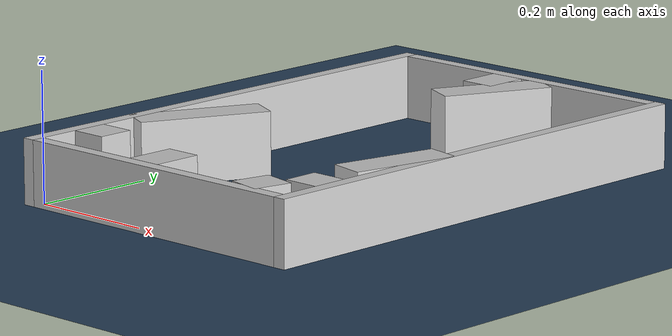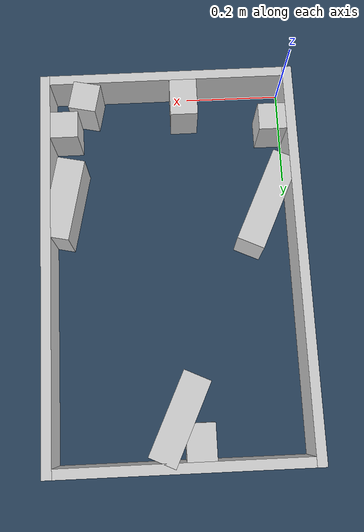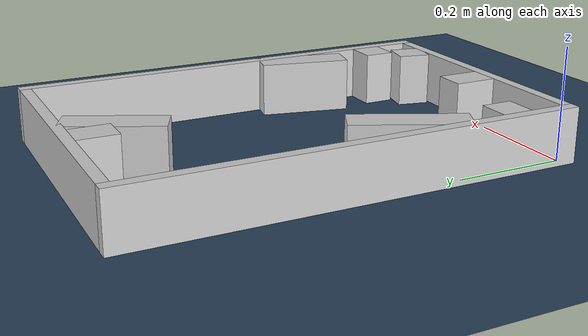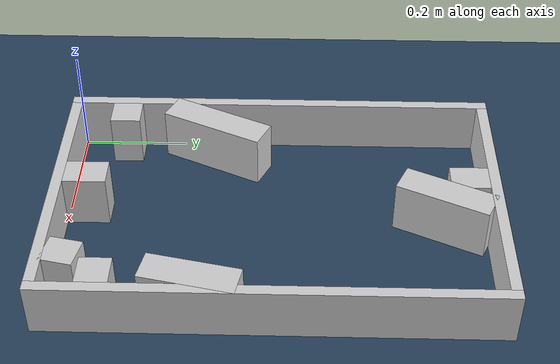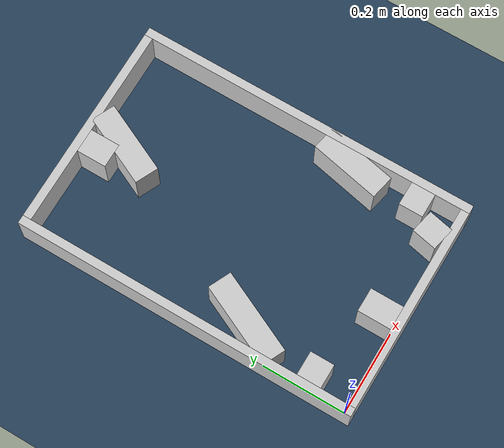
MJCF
<?xml version="1.0" ?>
<mujoco model="generated_real_template">
  <compiler angle="degree"/>
  <option timestep="0.002" integrator="implicitfast" iterations="100" cone="elliptic"/>
  <default>
    <geom density="1"/>
  </default>
  <asset>
    <texture builtin="gradient" height="3072" rgb1="0.3 0.5 0.7" rgb2="0 0 0" type="skybox" width="512"/>
    <texture builtin="checker" height="300" mark="edge" markrgb="0.8 0.8 0.8" name="groundplane" rgb1="0.2 0.3 0.4" rgb2="0.1 0.2 0.3" type="2d" width="300"/>
    <material name="groundplane" reflectance="0.2" texrepeat="5 5" texture="groundplane" texuniform="true"/>
  </asset>
  <worldbody>
    <light dir="0 0 -1" directional="true" pos="0 0 1.5"/>
    <geom name="floor" type="plane" condim="4" friction="0.5 0.005 0.001" material="groundplane" size="0 0 0.05"/>
    <body name="walls">
      <geom name="wall_boundary_left" type="box" condim="4" friction="1.0 0.005 0.0001" rgba="0.8 0.8 0.8 1" pos="-0.010000 0.387500 0.050000" euler="0 0 0.000000" size="0.010000 0.407500 0.050000"/>
      <geom name="wall_boundary_right" type="box" condim="4" friction="1.0 0.005 0.0001" rgba="0.8 0.8 0.8 1" pos="0.500000 0.387500 0.050000" euler="0 0 0.000000" size="0.010000 0.407500 0.050000"/>
      <geom name="wall_boundary_bottom" type="box" condim="4" friction="1.0 0.005 0.0001" rgba="0.8 0.8 0.8 1" pos="0.245000 -0.010000 0.050000" euler="0 0 0.000000" size="0.245000 0.010000 0.050000"/>
      <geom name="wall_boundary_top" type="box" condim="4" friction="1.0 0.005 0.0001" rgba="0.8 0.8 0.8 1" pos="0.245000 0.785000 0.050000" euler="0 0 0.000000" size="0.245000 0.010000 0.050000"/>
      <geom name="wall_inner_1_1" type="box" condim="4" friction="1.0 0.005 0.0001" rgba="0.8 0.8 0.8 1" pos="0.028525 0.091113 0.050000" euler="0 0 0.000000" size="0.028525 0.028500 0.050000"/>
      <geom name="wall_inner_1_2" type="box" condim="4" friction="1.0 0.005 0.0001" rgba="0.8 0.8 0.8 1" pos="0.461374 0.091113 0.050000" euler="0 0 0.000000" size="0.028626 0.028500 0.050000"/>
      <geom name="wall_inner_2_1" type="box" condim="4" friction="1.0 0.005 0.0001" rgba="0.8 0.8 0.8 1" pos="0.464630 0.250605 0.050000" euler="0 0 -101.945536" size="0.084483 0.028500 0.050000"/>
      <geom name="wall_inner_2_2" type="box" condim="4" friction="1.0 0.005 0.0001" rgba="0.8 0.8 0.8 1" pos="0.417850 0.029492 0.050000" euler="0 0 -101.945536" size="0.030145 0.028500 0.050000"/>
      <geom name="wall_inner_3_1" type="box" condim="4" friction="1.0 0.005 0.0001" rgba="0.8 0.8 0.8 1" pos="0.248624 0.695503 0.050000" euler="0 0 -115.126793" size="0.087806 0.028500 0.050000"/>
      <geom name="wall_inner_3_2" type="box" condim="4" friction="1.0 0.005 0.0001" rgba="0.8 0.8 0.8 1" pos="0.048935 0.269732 0.050000" euler="0 0 -115.126793" size="0.101575 0.028500 0.050000"/>
      <geom name="wall_inner_4_1" type="box" condim="4" friction="1.0 0.005 0.0001" rgba="0.8 0.8 0.8 1" pos="0.210885 0.039373 0.050000" euler="0 0 90.000000" size="0.039373 0.028500 0.050000"/>
      <geom name="wall_inner_4_2" type="box" condim="4" friction="1.0 0.005 0.0001" rgba="0.8 0.8 0.8 1" pos="0.210885 0.739689 0.050000" euler="0 0 90.000000" size="0.035311 0.028500 0.050000"/>
    </body>
  </worldbody>
</mujoco>
